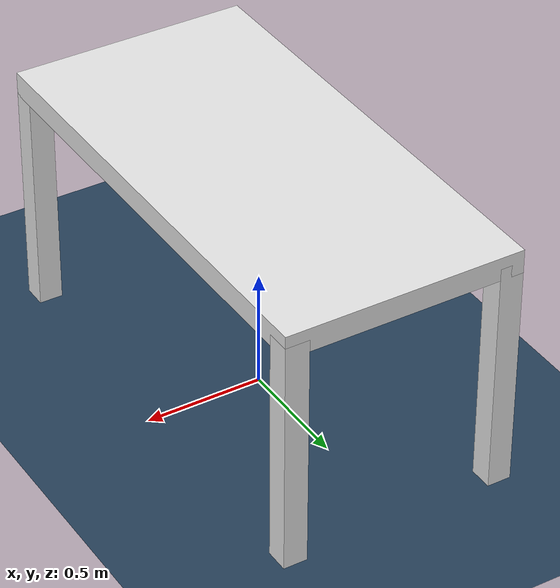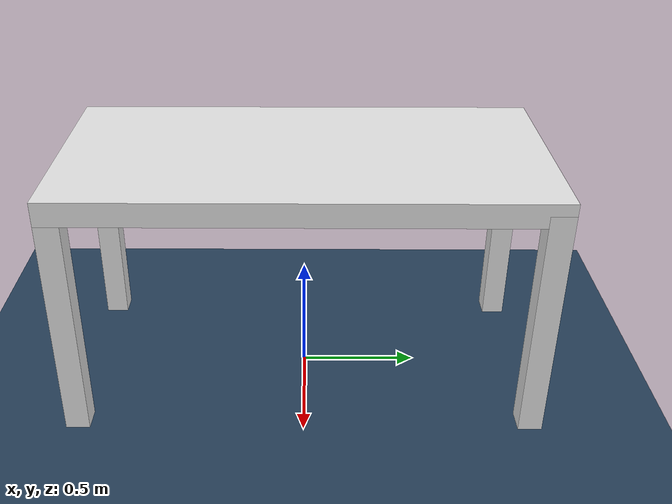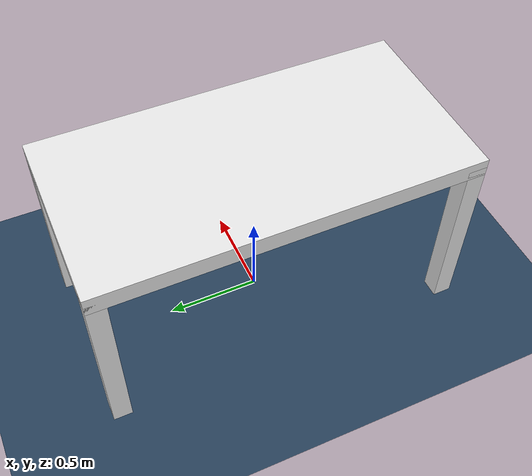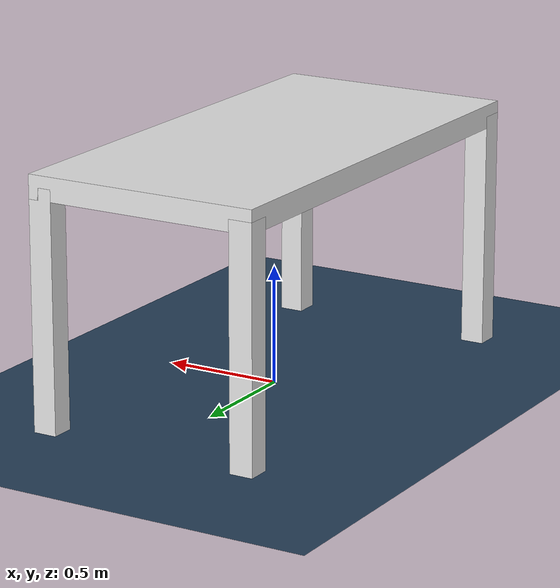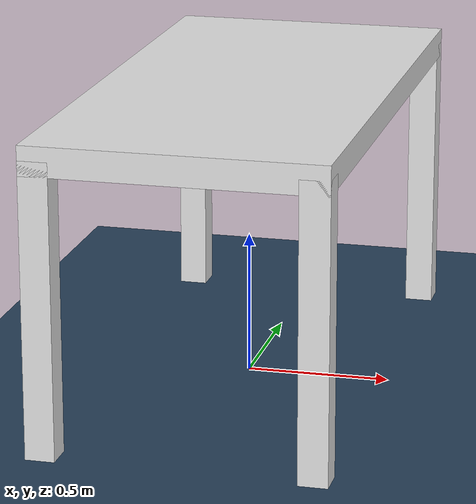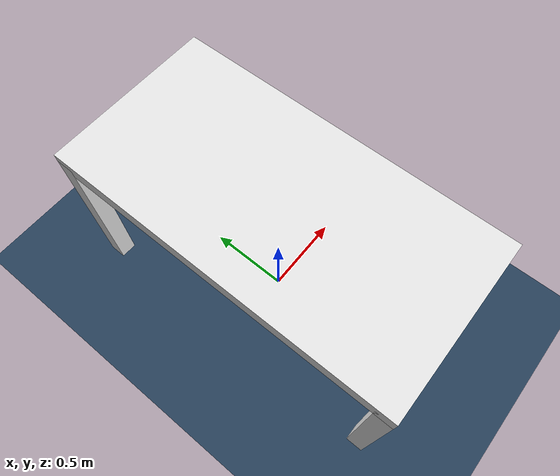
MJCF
<mujoco>

    <asset>
        <texture name="grid" type="2d" builtin="checker" width="512" height="512" rgb1=".1 .2 .3" rgb2=".2 .3 .4" />
        <material name="grid" texture="grid" texrepeat="1 1" texuniform="true" reflectance=".2" />
    </asset>

    <worldbody>
        <geom name="floor" size="0 0 .05" type="plane" material="grid" condim="4" friction="2 0.05 0.01" />
        <light diffuse=".5 .5 .5" pos="0 -1 5" dir="0 0 -1" />
        <light diffuse=".5 .5 .5" pos="0 1 5" dir="0 0 -1" />
    </worldbody>

    <worldbody>
        <body name="table" pos="0 0 1" quat="0.707 0.0 0.0 0.707">
            <geom type="box" size="1 .5 .05" rgba="0.9 0.9 .9 1" mass="6" condim="4" friction="2 0.05 0.01" />
            <geom type="box" pos=".95 .45 -.5" size=".05 .05 .5" rgba="0.9 0.9 .9 1" mass="1" />
            <geom type="box" pos="-.95 .45 -.5" size=".05 .05 .5" rgba="0.9 0.9 .9 1" mass="1" />
            <geom type="box" pos=".95 -.45 -.5" size=".05 .05 .5" rgba="0.9 0.9 .9 1" mass="1" />
            <geom type="box" pos="-.95 -.45 -.5" size=".05 .05 .5" rgba="0.9 0.9 .9 1" mass="1" />
        </body>
    </worldbody>
</mujoco>
